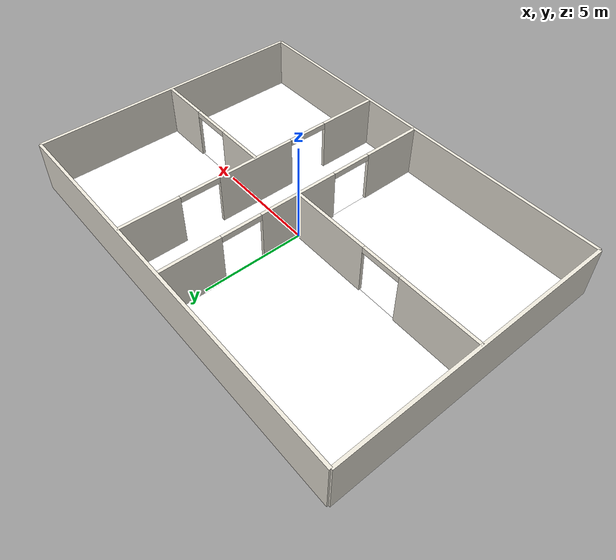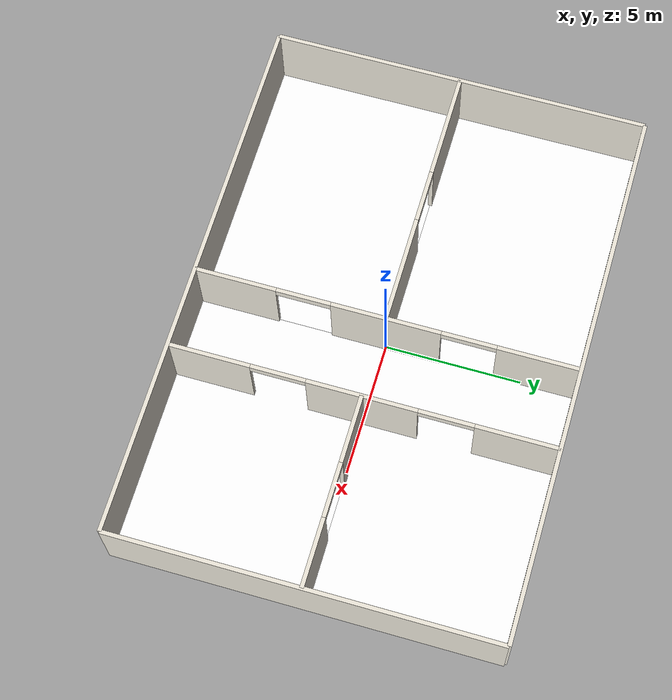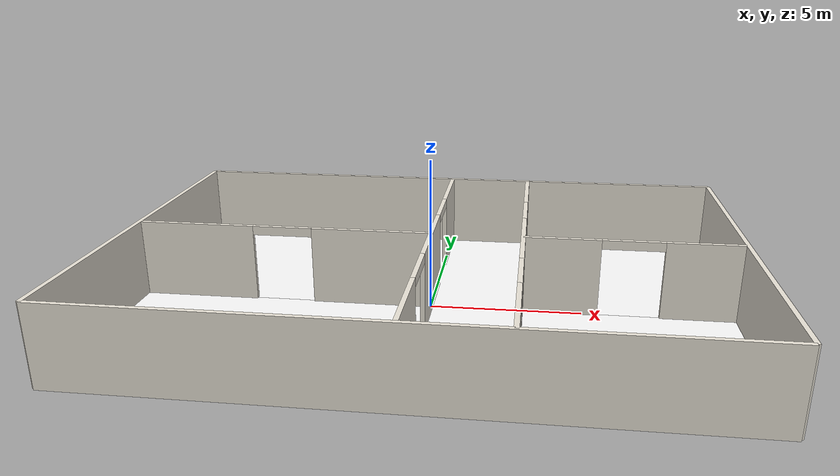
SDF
<sdf version="1.9">
 <world name="indoor_furniture">
  <include><uri>model://indoor_house</uri></include>
  <model name="wall_south">
   <static>true</static>
   <link name="seg0">
    <pose>0.000 -7.000 1.300 0 0 0.000</pose>
    <collision name="col"><geometry><box><size>20.000 0.150 2.600</size></box></geometry></collision>
    <visual name="vis">
     <geometry><box><size>20.000 0.150 2.600</size></box></geometry>
     <material>
      <ambient>0.92 0.9 0.85 1</ambient>
      <diffuse>0.92 0.9 0.85 1</diffuse>
      <specular>0.1 0.1 0.1 1</specular>
     </material>
    </visual>
   </link>
  </model>
  <model name="wall_north">
   <static>true</static>
   <link name="seg0">
    <pose>0.000 7.000 1.300 0 0 0.000</pose>
    <collision name="col"><geometry><box><size>20.000 0.150 2.600</size></box></geometry></collision>
    <visual name="vis">
     <geometry><box><size>20.000 0.150 2.600</size></box></geometry>
     <material>
      <ambient>0.92 0.9 0.85 1</ambient>
      <diffuse>0.92 0.9 0.85 1</diffuse>
      <specular>0.1 0.1 0.1 1</specular>
     </material>
    </visual>
   </link>
  </model>
  <model name="wall_west">
   <static>true</static>
   <link name="seg0">
    <pose>-10.000 0.000 1.300 0 0 0.000</pose>
    <collision name="col"><geometry><box><size>0.150 14.000 2.600</size></box></geometry></collision>
    <visual name="vis">
     <geometry><box><size>0.150 14.000 2.600</size></box></geometry>
     <material>
      <ambient>0.92 0.9 0.85 1</ambient>
      <diffuse>0.92 0.9 0.85 1</diffuse>
      <specular>0.1 0.1 0.1 1</specular>
     </material>
    </visual>
   </link>
  </model>
  <model name="wall_east">
   <static>true</static>
   <link name="seg0">
    <pose>10.000 0.000 1.300 0 0 0.000</pose>
    <collision name="col"><geometry><box><size>0.150 14.000 2.600</size></box></geometry></collision>
    <visual name="vis">
     <geometry><box><size>0.150 14.000 2.600</size></box></geometry>
     <material>
      <ambient>0.92 0.9 0.85 1</ambient>
      <diffuse>0.92 0.9 0.85 1</diffuse>
      <specular>0.1 0.1 0.1 1</specular>
     </material>
    </visual>
   </link>
  </model>
  <model name="wall_living_hall">
   <static>true</static>
   <link name="seg0">
    <pose>0.000 -5.500 1.300 0 0 0.000</pose>
    <collision name="col"><geometry><box><size>0.150 3.000 2.600</size></box></geometry></collision>
    <visual name="vis">
     <geometry><box><size>0.150 3.000 2.600</size></box></geometry>
     <material>
      <ambient>0.92 0.9 0.85 1</ambient>
      <diffuse>0.92 0.9 0.85 1</diffuse>
      <specular>0.1 0.1 0.1 1</specular>
     </material>
    </visual>
   </link>
   <link name="seg1">
    <pose>0.000 0.000 1.300 0 0 0.000</pose>
    <collision name="col"><geometry><box><size>0.150 4.000 2.600</size></box></geometry></collision>
    <visual name="vis">
     <geometry><box><size>0.150 4.000 2.600</size></box></geometry>
     <material>
      <ambient>0.92 0.9 0.85 1</ambient>
      <diffuse>0.92 0.9 0.85 1</diffuse>
      <specular>0.1 0.1 0.1 1</specular>
     </material>
    </visual>
   </link>
   <link name="seg2">
    <pose>0.000 5.500 1.300 0 0 0.000</pose>
    <collision name="col"><geometry><box><size>0.150 3.000 2.600</size></box></geometry></collision>
    <visual name="vis">
     <geometry><box><size>0.150 3.000 2.600</size></box></geometry>
     <material>
      <ambient>0.92 0.9 0.85 1</ambient>
      <diffuse>0.92 0.9 0.85 1</diffuse>
      <specular>0.1 0.1 0.1 1</specular>
     </material>
    </visual>
   </link>
   <link name="lintel3">
    <pose>0.000 3.000 2.450 0 0 0.000</pose>
    <collision name="col"><geometry><box><size>0.150 2.000 0.300</size></box></geometry></collision>
    <visual name="vis">
     <geometry><box><size>0.150 2.000 0.300</size></box></geometry>
     <material>
      <ambient>0.92 0.9 0.85 1</ambient>
      <diffuse>0.92 0.9 0.85 1</diffuse>
      <specular>0.1 0.1 0.1 1</specular>
     </material>
    </visual>
   </link>
   <link name="lintel4">
    <pose>0.000 -3.000 2.450 0 0 0.000</pose>
    <collision name="col"><geometry><box><size>0.150 2.000 0.300</size></box></geometry></collision>
    <visual name="vis">
     <geometry><box><size>0.150 2.000 0.300</size></box></geometry>
     <material>
      <ambient>0.92 0.9 0.85 1</ambient>
      <diffuse>0.92 0.9 0.85 1</diffuse>
      <specular>0.1 0.1 0.1 1</specular>
     </material>
    </visual>
   </link>
  </model>
  <model name="wall_living_kitchen">
   <static>true</static>
   <link name="seg0">
    <pose>-8.000 0.000 1.300 0 0 0.000</pose>
    <collision name="col"><geometry><box><size>4.000 0.150 2.600</size></box></geometry></collision>
    <visual name="vis">
     <geometry><box><size>4.000 0.150 2.600</size></box></geometry>
     <material>
      <ambient>0.92 0.9 0.85 1</ambient>
      <diffuse>0.92 0.9 0.85 1</diffuse>
      <specular>0.1 0.1 0.1 1</specular>
     </material>
    </visual>
   </link>
   <link name="seg1">
    <pose>-2.000 0.000 1.300 0 0 0.000</pose>
    <collision name="col"><geometry><box><size>4.000 0.150 2.600</size></box></geometry></collision>
    <visual name="vis">
     <geometry><box><size>4.000 0.150 2.600</size></box></geometry>
     <material>
      <ambient>0.92 0.9 0.85 1</ambient>
      <diffuse>0.92 0.9 0.85 1</diffuse>
      <specular>0.1 0.1 0.1 1</specular>
     </material>
    </visual>
   </link>
   <link name="lintel2">
    <pose>-5.000 0.000 2.450 0 0 0.000</pose>
    <collision name="col"><geometry><box><size>2.000 0.150 0.300</size></box></geometry></collision>
    <visual name="vis">
     <geometry><box><size>2.000 0.150 0.300</size></box></geometry>
     <material>
      <ambient>0.92 0.9 0.85 1</ambient>
      <diffuse>0.92 0.9 0.85 1</diffuse>
      <specular>0.1 0.1 0.1 1</specular>
     </material>
    </visual>
   </link>
  </model>
  <model name="wall_hall_east">
   <static>true</static>
   <link name="seg0">
    <pose>3.000 -5.500 1.300 0 0 0.000</pose>
    <collision name="col"><geometry><box><size>0.150 3.000 2.600</size></box></geometry></collision>
    <visual name="vis">
     <geometry><box><size>0.150 3.000 2.600</size></box></geometry>
     <material>
      <ambient>0.92 0.9 0.85 1</ambient>
      <diffuse>0.92 0.9 0.85 1</diffuse>
      <specular>0.1 0.1 0.1 1</specular>
     </material>
    </visual>
   </link>
   <link name="seg1">
    <pose>3.000 0.000 1.300 0 0 0.000</pose>
    <collision name="col"><geometry><box><size>0.150 4.000 2.600</size></box></geometry></collision>
    <visual name="vis">
     <geometry><box><size>0.150 4.000 2.600</size></box></geometry>
     <material>
      <ambient>0.92 0.9 0.85 1</ambient>
      <diffuse>0.92 0.9 0.85 1</diffuse>
      <specular>0.1 0.1 0.1 1</specular>
     </material>
    </visual>
   </link>
   <link name="seg2">
    <pose>3.000 5.500 1.300 0 0 0.000</pose>
    <collision name="col"><geometry><box><size>0.150 3.000 2.600</size></box></geometry></collision>
    <visual name="vis">
     <geometry><box><size>0.150 3.000 2.600</size></box></geometry>
     <material>
      <ambient>0.92 0.9 0.85 1</ambient>
      <diffuse>0.92 0.9 0.85 1</diffuse>
      <specular>0.1 0.1 0.1 1</specular>
     </material>
    </visual>
   </link>
   <link name="lintel3">
    <pose>3.000 3.000 2.450 0 0 0.000</pose>
    <collision name="col"><geometry><box><size>0.150 2.000 0.300</size></box></geometry></collision>
    <visual name="vis">
     <geometry><box><size>0.150 2.000 0.300</size></box></geometry>
     <material>
      <ambient>0.92 0.9 0.85 1</ambient>
      <diffuse>0.92 0.9 0.85 1</diffuse>
      <specular>0.1 0.1 0.1 1</specular>
     </material>
    </visual>
   </link>
   <link name="lintel4">
    <pose>3.000 -3.000 2.450 0 0 0.000</pose>
    <collision name="col"><geometry><box><size>0.150 2.000 0.300</size></box></geometry></collision>
    <visual name="vis">
     <geometry><box><size>0.150 2.000 0.300</size></box></geometry>
     <material>
      <ambient>0.92 0.9 0.85 1</ambient>
      <diffuse>0.92 0.9 0.85 1</diffuse>
      <specular>0.1 0.1 0.1 1</specular>
     </material>
    </visual>
   </link>
  </model>
  <model name="wall_bedroom_study">
   <static>true</static>
   <link name="seg0">
    <pose>4.250 0.000 1.300 0 0 0.000</pose>
    <collision name="col"><geometry><box><size>2.500 0.150 2.600</size></box></geometry></collision>
    <visual name="vis">
     <geometry><box><size>2.500 0.150 2.600</size></box></geometry>
     <material>
      <ambient>0.92 0.9 0.85 1</ambient>
      <diffuse>0.92 0.9 0.85 1</diffuse>
      <specular>0.1 0.1 0.1 1</specular>
     </material>
    </visual>
   </link>
   <link name="seg1">
    <pose>8.750 0.000 1.300 0 0 0.000</pose>
    <collision name="col"><geometry><box><size>2.500 0.150 2.600</size></box></geometry></collision>
    <visual name="vis">
     <geometry><box><size>2.500 0.150 2.600</size></box></geometry>
     <material>
      <ambient>0.92 0.9 0.85 1</ambient>
      <diffuse>0.92 0.9 0.85 1</diffuse>
      <specular>0.1 0.1 0.1 1</specular>
     </material>
    </visual>
   </link>
   <link name="lintel2">
    <pose>6.500 0.000 2.450 0 0 0.000</pose>
    <collision name="col"><geometry><box><size>2.000 0.150 0.300</size></box></geometry></collision>
    <visual name="vis">
     <geometry><box><size>2.000 0.150 0.300</size></box></geometry>
     <material>
      <ambient>0.92 0.9 0.85 1</ambient>
      <diffuse>0.92 0.9 0.85 1</diffuse>
      <specular>0.1 0.1 0.1 1</specular>
     </material>
    </visual>
   </link>
  </model>
 </world>
</sdf>
